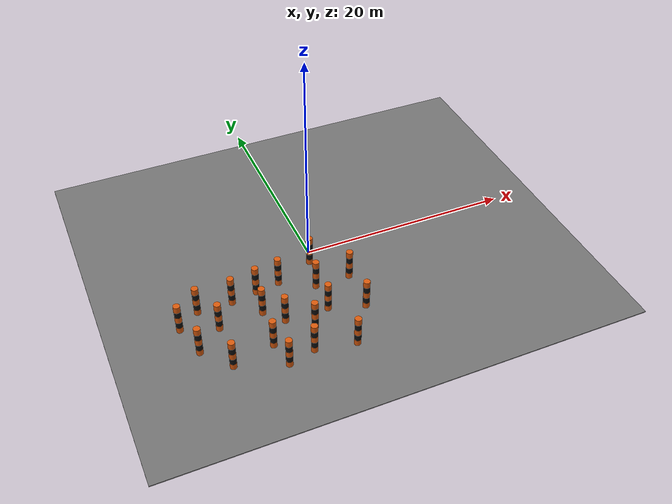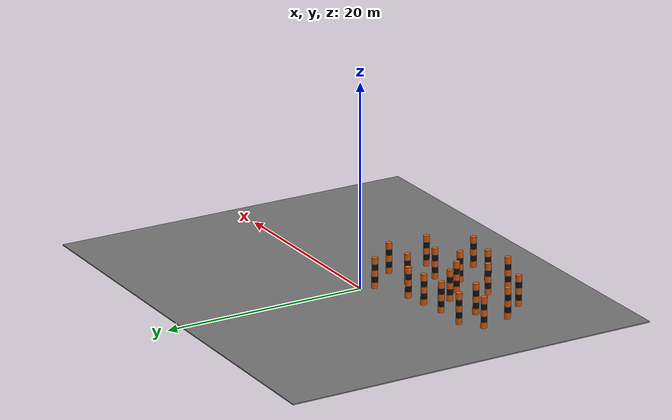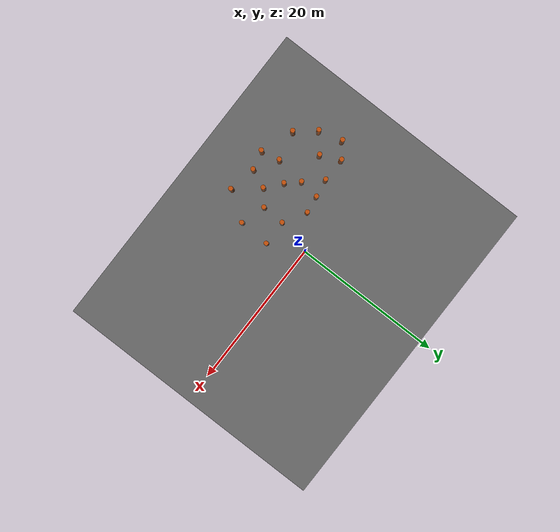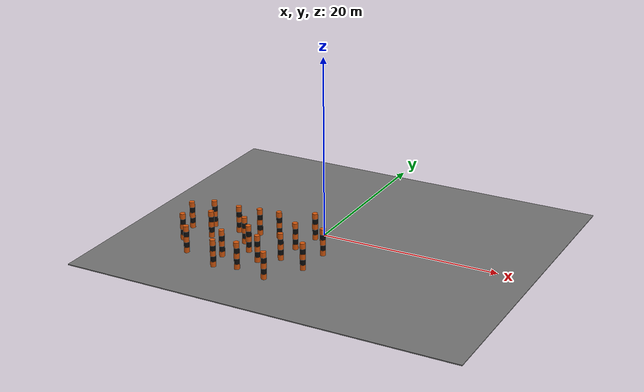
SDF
<sdf version="1.6">
 <world name="medium_forest_striped_poles_passable_0p10_per_m2">
  <model name="ground">
   <static>true</static>
   <pose>2 0 -0.05 0 0 0</pose>
   <link name="link">
    <collision name="collision">
     <geometry><box><size>44 37 0.1</size></box></geometry>
     <surface><friction><ode><mu>1.0</mu><mu2>1.0</mu2></ode></friction></surface>
    </collision>
    <visual name="visual">
     <geometry><box><size>44 37 0.1</size></box></geometry>
     <material>
      <ambient>0.45 0.45 0.45 1</ambient>
      <diffuse>0.45 0.45 0.45 1</diffuse>
      <specular>0.02 0.02 0.02 1</specular>
     </material>
    </visual>
   </link>
  </model>
  <model name="passable_striped_pole_002">
   <static>true</static>
   <pose>-5.064 -7.254 0 0 0 0</pose>
   <link name="link">
    <collision name="collision">
     <pose>0 0 1.5 0 0 0</pose>
     <geometry><cylinder><radius>0.30</radius><length>3.0</length></cylinder></geometry>
     <surface>
      <contact><ode><kp>1000000</kp><kd>100</kd><max_vel>0.01</max_vel><min_depth>0.001</min_depth></ode></contact>
      <friction><ode><mu>1.0</mu><mu2>1.0</mu2></ode></friction>
     </surface>
    </collision>
    <visual name="band_1">
     <pose>0 0 0.3 0 0 0</pose>
     <geometry><cylinder><radius>0.30</radius><length>0.6</length></cylinder></geometry>
     <material>
      <ambient>0.85 0.35 0.05 1</ambient>
      <diffuse>0.85 0.35 0.05 1</diffuse>
      <specular>0.02 0.02 0.02 1</specular>
     </material>
    </visual>
    <visual name="band_2">
     <pose>0 0 0.9 0 0 0</pose>
     <geometry><cylinder><radius>0.30</radius><length>0.6</length></cylinder></geometry>
     <material>
      <ambient>0.05 0.05 0.05 1</ambient>
      <diffuse>0.05 0.05 0.05 1</diffuse>
      <specular>0.02 0.02 0.02 1</specular>
     </material>
    </visual>
    <visual name="band_3">
     <pose>0 0 1.5 0 0 0</pose>
     <geometry><cylinder><radius>0.30</radius><length>0.6</length></cylinder></geometry>
     <material>
      <ambient>0.85 0.35 0.05 1</ambient>
      <diffuse>0.85 0.35 0.05 1</diffuse>
      <specular>0.02 0.02 0.02 1</specular>
     </material>
    </visual>
    <visual name="band_4">
     <pose>0 0 2.1 0 0 0</pose>
     <geometry><cylinder><radius>0.30</radius><length>0.6</length></cylinder></geometry>
     <material>
      <ambient>0.05 0.05 0.05 1</ambient>
      <diffuse>0.05 0.05 0.05 1</diffuse>
      <specular>0.02 0.02 0.02 1</specular>
     </material>
    </visual>
    <visual name="band_5">
     <pose>0 0 2.7 0 0 0</pose>
     <geometry><cylinder><radius>0.30</radius><length>0.6</length></cylinder></geometry>
     <material>
      <ambient>0.85 0.35 0.05 1</ambient>
      <diffuse>0.85 0.35 0.05 1</diffuse>
      <specular>0.02 0.02 0.02 1</specular>
     </material>
    </visual>
   </link>
  </model>
  <model name="passable_striped_pole_005">
   <static>true</static>
   <pose>-0.452 -11.973 0 0 0 0</pose>
   <link name="link">
    <collision name="collision">
     <pose>0 0 1.5 0 0 0</pose>
     <geometry><cylinder><radius>0.30</radius><length>3.0</length></cylinder></geometry>
     <surface>
      <contact><ode><kp>1000000</kp><kd>100</kd><max_vel>0.01</max_vel><min_depth>0.001</min_depth></ode></contact>
      <friction><ode><mu>1.0</mu><mu2>1.0</mu2></ode></friction>
     </surface>
    </collision>
    <visual name="band_1">
     <pose>0 0 0.3 0 0 0</pose>
     <geometry><cylinder><radius>0.30</radius><length>0.6</length></cylinder></geometry>
     <material>
      <ambient>0.85 0.35 0.05 1</ambient>
      <diffuse>0.85 0.35 0.05 1</diffuse>
      <specular>0.02 0.02 0.02 1</specular>
     </material>
    </visual>
    <visual name="band_2">
     <pose>0 0 0.9 0 0 0</pose>
     <geometry><cylinder><radius>0.30</radius><length>0.6</length></cylinder></geometry>
     <material>
      <ambient>0.05 0.05 0.05 1</ambient>
      <diffuse>0.05 0.05 0.05 1</diffuse>
      <specular>0.02 0.02 0.02 1</specular>
     </material>
    </visual>
    <visual name="band_3">
     <pose>0 0 1.5 0 0 0</pose>
     <geometry><cylinder><radius>0.30</radius><length>0.6</length></cylinder></geometry>
     <material>
      <ambient>0.85 0.35 0.05 1</ambient>
      <diffuse>0.85 0.35 0.05 1</diffuse>
      <specular>0.02 0.02 0.02 1</specular>
     </material>
    </visual>
    <visual name="band_4">
     <pose>0 0 2.1 0 0 0</pose>
     <geometry><cylinder><radius>0.30</radius><length>0.6</length></cylinder></geometry>
     <material>
      <ambient>0.05 0.05 0.05 1</ambient>
      <diffuse>0.05 0.05 0.05 1</diffuse>
      <specular>0.02 0.02 0.02 1</specular>
     </material>
    </visual>
    <visual name="band_5">
     <pose>0 0 2.7 0 0 0</pose>
     <geometry><cylinder><radius>0.30</radius><length>0.6</length></cylinder></geometry>
     <material>
      <ambient>0.85 0.35 0.05 1</ambient>
      <diffuse>0.85 0.35 0.05 1</diffuse>
      <specular>0.02 0.02 0.02 1</specular>
     </material>
    </visual>
   </link>
  </model>
  <model name="passable_striped_pole_007">
   <static>true</static>
   <pose>-12.867 -7.848 0 0 0 0</pose>
   <link name="link">
    <collision name="collision">
     <pose>0 0 1.5 0 0 0</pose>
     <geometry><cylinder><radius>0.30</radius><length>3.0</length></cylinder></geometry>
     <surface>
      <contact><ode><kp>1000000</kp><kd>100</kd><max_vel>0.01</max_vel><min_depth>0.001</min_depth></ode></contact>
      <friction><ode><mu>1.0</mu><mu2>1.0</mu2></ode></friction>
     </surface>
    </collision>
    <visual name="band_1">
     <pose>0 0 0.3 0 0 0</pose>
     <geometry><cylinder><radius>0.30</radius><length>0.6</length></cylinder></geometry>
     <material>
      <ambient>0.85 0.35 0.05 1</ambient>
      <diffuse>0.85 0.35 0.05 1</diffuse>
      <specular>0.02 0.02 0.02 1</specular>
     </material>
    </visual>
    <visual name="band_2">
     <pose>0 0 0.9 0 0 0</pose>
     <geometry><cylinder><radius>0.30</radius><length>0.6</length></cylinder></geometry>
     <material>
      <ambient>0.05 0.05 0.05 1</ambient>
      <diffuse>0.05 0.05 0.05 1</diffuse>
      <specular>0.02 0.02 0.02 1</specular>
     </material>
    </visual>
    <visual name="band_3">
     <pose>0 0 1.5 0 0 0</pose>
     <geometry><cylinder><radius>0.30</radius><length>0.6</length></cylinder></geometry>
     <material>
      <ambient>0.85 0.35 0.05 1</ambient>
      <diffuse>0.85 0.35 0.05 1</diffuse>
      <specular>0.02 0.02 0.02 1</specular>
     </material>
    </visual>
    <visual name="band_4">
     <pose>0 0 2.1 0 0 0</pose>
     <geometry><cylinder><radius>0.30</radius><length>0.6</length></cylinder></geometry>
     <material>
      <ambient>0.05 0.05 0.05 1</ambient>
      <diffuse>0.05 0.05 0.05 1</diffuse>
      <specular>0.02 0.02 0.02 1</specular>
     </material>
    </visual>
    <visual name="band_5">
     <pose>0 0 2.7 0 0 0</pose>
     <geometry><cylinder><radius>0.30</radius><length>0.6</length></cylinder></geometry>
     <material>
      <ambient>0.85 0.35 0.05 1</ambient>
      <diffuse>0.85 0.35 0.05 1</diffuse>
      <specular>0.02 0.02 0.02 1</specular>
     </material>
    </visual>
   </link>
  </model>
  <model name="passable_striped_pole_011">
   <static>true</static>
   <pose>-3.016 -8.906 0 0 0 0</pose>
   <link name="link">
    <collision name="collision">
     <pose>0 0 1.5 0 0 0</pose>
     <geometry><cylinder><radius>0.30</radius><length>3.0</length></cylinder></geometry>
     <surface>
      <contact><ode><kp>1000000</kp><kd>100</kd><max_vel>0.01</max_vel><min_depth>0.001</min_depth></ode></contact>
      <friction><ode><mu>1.0</mu><mu2>1.0</mu2></ode></friction>
     </surface>
    </collision>
    <visual name="band_1">
     <pose>0 0 0.3 0 0 0</pose>
     <geometry><cylinder><radius>0.30</radius><length>0.6</length></cylinder></geometry>
     <material>
      <ambient>0.85 0.35 0.05 1</ambient>
      <diffuse>0.85 0.35 0.05 1</diffuse>
      <specular>0.02 0.02 0.02 1</specular>
     </material>
    </visual>
    <visual name="band_2">
     <pose>0 0 0.9 0 0 0</pose>
     <geometry><cylinder><radius>0.30</radius><length>0.6</length></cylinder></geometry>
     <material>
      <ambient>0.05 0.05 0.05 1</ambient>
      <diffuse>0.05 0.05 0.05 1</diffuse>
      <specular>0.02 0.02 0.02 1</specular>
     </material>
    </visual>
    <visual name="band_3">
     <pose>0 0 1.5 0 0 0</pose>
     <geometry><cylinder><radius>0.30</radius><length>0.6</length></cylinder></geometry>
     <material>
      <ambient>0.85 0.35 0.05 1</ambient>
      <diffuse>0.85 0.35 0.05 1</diffuse>
      <specular>0.02 0.02 0.02 1</specular>
     </material>
    </visual>
    <visual name="band_4">
     <pose>0 0 2.1 0 0 0</pose>
     <geometry><cylinder><radius>0.30</radius><length>0.6</length></cylinder></geometry>
     <material>
      <ambient>0.05 0.05 0.05 1</ambient>
      <diffuse>0.05 0.05 0.05 1</diffuse>
      <specular>0.02 0.02 0.02 1</specular>
     </material>
    </visual>
    <visual name="band_5">
     <pose>0 0 2.7 0 0 0</pose>
     <geometry><cylinder><radius>0.30</radius><length>0.6</length></cylinder></geometry>
     <material>
      <ambient>0.85 0.35 0.05 1</ambient>
      <diffuse>0.85 0.35 0.05 1</diffuse>
      <specular>0.02 0.02 0.02 1</specular>
     </material>
    </visual>
   </link>
  </model>
  <model name="passable_striped_pole_013">
   <static>true</static>
   <pose>-10.788 -10.340 0 0 0 0</pose>
   <link name="link">
    <collision name="collision">
     <pose>0 0 1.5 0 0 0</pose>
     <geometry><cylinder><radius>0.30</radius><length>3.0</length></cylinder></geometry>
     <surface>
      <contact><ode><kp>1000000</kp><kd>100</kd><max_vel>0.01</max_vel><min_depth>0.001</min_depth></ode></contact>
      <friction><ode><mu>1.0</mu><mu2>1.0</mu2></ode></friction>
     </surface>
    </collision>
    <visual name="band_1">
     <pose>0 0 0.3 0 0 0</pose>
     <geometry><cylinder><radius>0.30</radius><length>0.6</length></cylinder></geometry>
     <material>
      <ambient>0.85 0.35 0.05 1</ambient>
      <diffuse>0.85 0.35 0.05 1</diffuse>
      <specular>0.02 0.02 0.02 1</specular>
     </material>
    </visual>
    <visual name="band_2">
     <pose>0 0 0.9 0 0 0</pose>
     <geometry><cylinder><radius>0.30</radius><length>0.6</length></cylinder></geometry>
     <material>
      <ambient>0.05 0.05 0.05 1</ambient>
      <diffuse>0.05 0.05 0.05 1</diffuse>
      <specular>0.02 0.02 0.02 1</specular>
     </material>
    </visual>
    <visual name="band_3">
     <pose>0 0 1.5 0 0 0</pose>
     <geometry><cylinder><radius>0.30</radius><length>0.6</length></cylinder></geometry>
     <material>
      <ambient>0.85 0.35 0.05 1</ambient>
      <diffuse>0.85 0.35 0.05 1</diffuse>
      <specular>0.02 0.02 0.02 1</specular>
     </material>
    </visual>
    <visual name="band_4">
     <pose>0 0 2.1 0 0 0</pose>
     <geometry><cylinder><radius>0.30</radius><length>0.6</length></cylinder></geometry>
     <material>
      <ambient>0.05 0.05 0.05 1</ambient>
      <diffuse>0.05 0.05 0.05 1</diffuse>
      <specular>0.02 0.02 0.02 1</specular>
     </material>
    </visual>
    <visual name="band_5">
     <pose>0 0 2.7 0 0 0</pose>
     <geometry><cylinder><radius>0.30</radius><length>0.6</length></cylinder></geometry>
     <material>
      <ambient>0.85 0.35 0.05 1</ambient>
      <diffuse>0.85 0.35 0.05 1</diffuse>
      <specular>0.02 0.02 0.02 1</specular>
     </material>
    </visual>
   </link>
  </model>
  <model name="passable_striped_pole_017">
   <static>true</static>
   <pose>-6.544 -5.639 0 0 0 0</pose>
   <link name="link">
    <collision name="collision">
     <pose>0 0 1.5 0 0 0</pose>
     <geometry><cylinder><radius>0.30</radius><length>3.0</length></cylinder></geometry>
     <surface>
      <contact><ode><kp>1000000</kp><kd>100</kd><max_vel>0.01</max_vel><min_depth>0.001</min_depth></ode></contact>
      <friction><ode><mu>1.0</mu><mu2>1.0</mu2></ode></friction>
     </surface>
    </collision>
    <visual name="band_1">
     <pose>0 0 0.3 0 0 0</pose>
     <geometry><cylinder><radius>0.30</radius><length>0.6</length></cylinder></geometry>
     <material>
      <ambient>0.85 0.35 0.05 1</ambient>
      <diffuse>0.85 0.35 0.05 1</diffuse>
      <specular>0.02 0.02 0.02 1</specular>
     </material>
    </visual>
    <visual name="band_2">
     <pose>0 0 0.9 0 0 0</pose>
     <geometry><cylinder><radius>0.30</radius><length>0.6</length></cylinder></geometry>
     <material>
      <ambient>0.05 0.05 0.05 1</ambient>
      <diffuse>0.05 0.05 0.05 1</diffuse>
      <specular>0.02 0.02 0.02 1</specular>
     </material>
    </visual>
    <visual name="band_3">
     <pose>0 0 1.5 0 0 0</pose>
     <geometry><cylinder><radius>0.30</radius><length>0.6</length></cylinder></geometry>
     <material>
      <ambient>0.85 0.35 0.05 1</ambient>
      <diffuse>0.85 0.35 0.05 1</diffuse>
      <specular>0.02 0.02 0.02 1</specular>
     </material>
    </visual>
    <visual name="band_4">
     <pose>0 0 2.1 0 0 0</pose>
     <geometry><cylinder><radius>0.30</radius><length>0.6</length></cylinder></geometry>
     <material>
      <ambient>0.05 0.05 0.05 1</ambient>
      <diffuse>0.05 0.05 0.05 1</diffuse>
      <specular>0.02 0.02 0.02 1</specular>
     </material>
    </visual>
    <visual name="band_5">
     <pose>0 0 2.7 0 0 0</pose>
     <geometry><cylinder><radius>0.30</radius><length>0.6</length></cylinder></geometry>
     <material>
      <ambient>0.85 0.35 0.05 1</ambient>
      <diffuse>0.85 0.35 0.05 1</diffuse>
      <specular>0.02 0.02 0.02 1</specular>
     </material>
    </visual>
   </link>
  </model>
  <model name="passable_striped_pole_018">
   <static>true</static>
   <pose>-10.529 -5.917 0 0 0 0</pose>
   <link name="link">
    <collision name="collision">
     <pose>0 0 1.5 0 0 0</pose>
     <geometry><cylinder><radius>0.30</radius><length>3.0</length></cylinder></geometry>
     <surface>
      <contact><ode><kp>1000000</kp><kd>100</kd><max_vel>0.01</max_vel><min_depth>0.001</min_depth></ode></contact>
      <friction><ode><mu>1.0</mu><mu2>1.0</mu2></ode></friction>
     </surface>
    </collision>
    <visual name="band_1">
     <pose>0 0 0.3 0 0 0</pose>
     <geometry><cylinder><radius>0.30</radius><length>0.6</length></cylinder></geometry>
     <material>
      <ambient>0.85 0.35 0.05 1</ambient>
      <diffuse>0.85 0.35 0.05 1</diffuse>
      <specular>0.02 0.02 0.02 1</specular>
     </material>
    </visual>
    <visual name="band_2">
     <pose>0 0 0.9 0 0 0</pose>
     <geometry><cylinder><radius>0.30</radius><length>0.6</length></cylinder></geometry>
     <material>
      <ambient>0.05 0.05 0.05 1</ambient>
      <diffuse>0.05 0.05 0.05 1</diffuse>
      <specular>0.02 0.02 0.02 1</specular>
     </material>
    </visual>
    <visual name="band_3">
     <pose>0 0 1.5 0 0 0</pose>
     <geometry><cylinder><radius>0.30</radius><length>0.6</length></cylinder></geometry>
     <material>
      <ambient>0.85 0.35 0.05 1</ambient>
      <diffuse>0.85 0.35 0.05 1</diffuse>
      <specular>0.02 0.02 0.02 1</specular>
     </material>
    </visual>
    <visual name="band_4">
     <pose>0 0 2.1 0 0 0</pose>
     <geometry><cylinder><radius>0.30</radius><length>0.6</length></cylinder></geometry>
     <material>
      <ambient>0.05 0.05 0.05 1</ambient>
      <diffuse>0.05 0.05 0.05 1</diffuse>
      <specular>0.02 0.02 0.02 1</specular>
     </material>
    </visual>
    <visual name="band_5">
     <pose>0 0 2.7 0 0 0</pose>
     <geometry><cylinder><radius>0.30</radius><length>0.6</length></cylinder></geometry>
     <material>
      <ambient>0.85 0.35 0.05 1</ambient>
      <diffuse>0.85 0.35 0.05 1</diffuse>
      <specular>0.02 0.02 0.02 1</specular>
     </material>
    </visual>
   </link>
  </model>
  <model name="passable_striped_pole_022">
   <static>true</static>
   <pose>-8.569 -3.441 0 0 0 0</pose>
   <link name="link">
    <collision name="collision">
     <pose>0 0 1.5 0 0 0</pose>
     <geometry><cylinder><radius>0.30</radius><length>3.0</length></cylinder></geometry>
     <surface>
      <contact><ode><kp>1000000</kp><kd>100</kd><max_vel>0.01</max_vel><min_depth>0.001</min_depth></ode></contact>
      <friction><ode><mu>1.0</mu><mu2>1.0</mu2></ode></friction>
     </surface>
    </collision>
    <visual name="band_1">
     <pose>0 0 0.3 0 0 0</pose>
     <geometry><cylinder><radius>0.30</radius><length>0.6</length></cylinder></geometry>
     <material>
      <ambient>0.85 0.35 0.05 1</ambient>
      <diffuse>0.85 0.35 0.05 1</diffuse>
      <specular>0.02 0.02 0.02 1</specular>
     </material>
    </visual>
    <visual name="band_2">
     <pose>0 0 0.9 0 0 0</pose>
     <geometry><cylinder><radius>0.30</radius><length>0.6</length></cylinder></geometry>
     <material>
      <ambient>0.05 0.05 0.05 1</ambient>
      <diffuse>0.05 0.05 0.05 1</diffuse>
      <specular>0.02 0.02 0.02 1</specular>
     </material>
    </visual>
    <visual name="band_3">
     <pose>0 0 1.5 0 0 0</pose>
     <geometry><cylinder><radius>0.30</radius><length>0.6</length></cylinder></geometry>
     <material>
      <ambient>0.85 0.35 0.05 1</ambient>
      <diffuse>0.85 0.35 0.05 1</diffuse>
      <specular>0.02 0.02 0.02 1</specular>
     </material>
    </visual>
    <visual name="band_4">
     <pose>0 0 2.1 0 0 0</pose>
     <geometry><cylinder><radius>0.30</radius><length>0.6</length></cylinder></geometry>
     <material>
      <ambient>0.05 0.05 0.05 1</ambient>
      <diffuse>0.05 0.05 0.05 1</diffuse>
      <specular>0.02 0.02 0.02 1</specular>
     </material>
    </visual>
    <visual name="band_5">
     <pose>0 0 2.7 0 0 0</pose>
     <geometry><cylinder><radius>0.30</radius><length>0.6</length></cylinder></geometry>
     <material>
      <ambient>0.85 0.35 0.05 1</ambient>
      <diffuse>0.85 0.35 0.05 1</diffuse>
      <specular>0.02 0.02 0.02 1</specular>
     </material>
    </visual>
   </link>
  </model>
  <model name="passable_striped_pole_026">
   <static>true</static>
   <pose>-6.508 -11.917 0 0 0 0</pose>
   <link name="link">
    <collision name="collision">
     <pose>0 0 1.5 0 0 0</pose>
     <geometry><cylinder><radius>0.30</radius><length>3.0</length></cylinder></geometry>
     <surface>
      <contact><ode><kp>1000000</kp><kd>100</kd><max_vel>0.01</max_vel><min_depth>0.001</min_depth></ode></contact>
      <friction><ode><mu>1.0</mu><mu2>1.0</mu2></ode></friction>
     </surface>
    </collision>
    <visual name="band_1">
     <pose>0 0 0.3 0 0 0</pose>
     <geometry><cylinder><radius>0.30</radius><length>0.6</length></cylinder></geometry>
     <material>
      <ambient>0.85 0.35 0.05 1</ambient>
      <diffuse>0.85 0.35 0.05 1</diffuse>
      <specular>0.02 0.02 0.02 1</specular>
     </material>
    </visual>
    <visual name="band_2">
     <pose>0 0 0.9 0 0 0</pose>
     <geometry><cylinder><radius>0.30</radius><length>0.6</length></cylinder></geometry>
     <material>
      <ambient>0.05 0.05 0.05 1</ambient>
      <diffuse>0.05 0.05 0.05 1</diffuse>
      <specular>0.02 0.02 0.02 1</specular>
     </material>
    </visual>
    <visual name="band_3">
     <pose>0 0 1.5 0 0 0</pose>
     <geometry><cylinder><radius>0.30</radius><length>0.6</length></cylinder></geometry>
     <material>
      <ambient>0.85 0.35 0.05 1</ambient>
      <diffuse>0.85 0.35 0.05 1</diffuse>
      <specular>0.02 0.02 0.02 1</specular>
     </material>
    </visual>
    <visual name="band_4">
     <pose>0 0 2.1 0 0 0</pose>
     <geometry><cylinder><radius>0.30</radius><length>0.6</length></cylinder></geometry>
     <material>
      <ambient>0.05 0.05 0.05 1</ambient>
      <diffuse>0.05 0.05 0.05 1</diffuse>
      <specular>0.02 0.02 0.02 1</specular>
     </material>
    </visual>
    <visual name="band_5">
     <pose>0 0 2.7 0 0 0</pose>
     <geometry><cylinder><radius>0.30</radius><length>0.6</length></cylinder></geometry>
     <material>
      <ambient>0.85 0.35 0.05 1</ambient>
      <diffuse>0.85 0.35 0.05 1</diffuse>
      <specular>0.02 0.02 0.02 1</specular>
     </material>
    </visual>
   </link>
  </model>
  <model name="passable_striped_pole_030">
   <static>true</static>
   <pose>-1.159 -7.349 0 0 0 0</pose>
   <link name="link">
    <collision name="collision">
     <pose>0 0 1.5 0 0 0</pose>
     <geometry><cylinder><radius>0.30</radius><length>3.0</length></cylinder></geometry>
     <surface>
      <contact><ode><kp>1000000</kp><kd>100</kd><max_vel>0.01</max_vel><min_depth>0.001</min_depth></ode></contact>
      <friction><ode><mu>1.0</mu><mu2>1.0</mu2></ode></friction>
     </surface>
    </collision>
    <visual name="band_1">
     <pose>0 0 0.3 0 0 0</pose>
     <geometry><cylinder><radius>0.30</radius><length>0.6</length></cylinder></geometry>
     <material>
      <ambient>0.85 0.35 0.05 1</ambient>
      <diffuse>0.85 0.35 0.05 1</diffuse>
      <specular>0.02 0.02 0.02 1</specular>
     </material>
    </visual>
    <visual name="band_2">
     <pose>0 0 0.9 0 0 0</pose>
     <geometry><cylinder><radius>0.30</radius><length>0.6</length></cylinder></geometry>
     <material>
      <ambient>0.05 0.05 0.05 1</ambient>
      <diffuse>0.05 0.05 0.05 1</diffuse>
      <specular>0.02 0.02 0.02 1</specular>
     </material>
    </visual>
    <visual name="band_3">
     <pose>0 0 1.5 0 0 0</pose>
     <geometry><cylinder><radius>0.30</radius><length>0.6</length></cylinder></geometry>
     <material>
      <ambient>0.85 0.35 0.05 1</ambient>
      <diffuse>0.85 0.35 0.05 1</diffuse>
      <specular>0.02 0.02 0.02 1</specular>
     </material>
    </visual>
    <visual name="band_4">
     <pose>0 0 2.1 0 0 0</pose>
     <geometry><cylinder><radius>0.30</radius><length>0.6</length></cylinder></geometry>
     <material>
      <ambient>0.05 0.05 0.05 1</ambient>
      <diffuse>0.05 0.05 0.05 1</diffuse>
      <specular>0.02 0.02 0.02 1</specular>
     </material>
    </visual>
    <visual name="band_5">
     <pose>0 0 2.7 0 0 0</pose>
     <geometry><cylinder><radius>0.30</radius><length>0.6</length></cylinder></geometry>
     <material>
      <ambient>0.85 0.35 0.05 1</ambient>
      <diffuse>0.85 0.35 0.05 1</diffuse>
      <specular>0.02 0.02 0.02 1</specular>
     </material>
    </visual>
   </link>
  </model>
  <model name="passable_striped_pole_033">
   <static>true</static>
   <pose>-11.705 -3.388 0 0 0 0</pose>
   <link name="link">
    <collision name="collision">
     <pose>0 0 1.5 0 0 0</pose>
     <geometry><cylinder><radius>0.30</radius><length>3.0</length></cylinder></geometry>
     <surface>
      <contact><ode><kp>1000000</kp><kd>100</kd><max_vel>0.01</max_vel><min_depth>0.001</min_depth></ode></contact>
      <friction><ode><mu>1.0</mu><mu2>1.0</mu2></ode></friction>
     </surface>
    </collision>
    <visual name="band_1">
     <pose>0 0 0.3 0 0 0</pose>
     <geometry><cylinder><radius>0.30</radius><length>0.6</length></cylinder></geometry>
     <material>
      <ambient>0.85 0.35 0.05 1</ambient>
      <diffuse>0.85 0.35 0.05 1</diffuse>
      <specular>0.02 0.02 0.02 1</specular>
     </material>
    </visual>
    <visual name="band_2">
     <pose>0 0 0.9 0 0 0</pose>
     <geometry><cylinder><radius>0.30</radius><length>0.6</length></cylinder></geometry>
     <material>
      <ambient>0.05 0.05 0.05 1</ambient>
      <diffuse>0.05 0.05 0.05 1</diffuse>
      <specular>0.02 0.02 0.02 1</specular>
     </material>
    </visual>
    <visual name="band_3">
     <pose>0 0 1.5 0 0 0</pose>
     <geometry><cylinder><radius>0.30</radius><length>0.6</length></cylinder></geometry>
     <material>
      <ambient>0.85 0.35 0.05 1</ambient>
      <diffuse>0.85 0.35 0.05 1</diffuse>
      <specular>0.02 0.02 0.02 1</specular>
     </material>
    </visual>
    <visual name="band_4">
     <pose>0 0 2.1 0 0 0</pose>
     <geometry><cylinder><radius>0.30</radius><length>0.6</length></cylinder></geometry>
     <material>
      <ambient>0.05 0.05 0.05 1</ambient>
      <diffuse>0.05 0.05 0.05 1</diffuse>
      <specular>0.02 0.02 0.02 1</specular>
     </material>
    </visual>
    <visual name="band_5">
     <pose>0 0 2.7 0 0 0</pose>
     <geometry><cylinder><radius>0.30</radius><length>0.6</length></cylinder></geometry>
     <material>
      <ambient>0.85 0.35 0.05 1</ambient>
      <diffuse>0.85 0.35 0.05 1</diffuse>
      <specular>0.02 0.02 0.02 1</specular>
     </material>
    </visual>
   </link>
  </model>
  <model name="passable_striped_pole_037">
   <static>true</static>
   <pose>2.018 -8.341 0 0 0 0</pose>
   <link name="link">
    <collision name="collision">
     <pose>0 0 1.5 0 0 0</pose>
     <geometry><cylinder><radius>0.30</radius><length>3.0</length></cylinder></geometry>
     <surface>
      <contact><ode><kp>1000000</kp><kd>100</kd><max_vel>0.01</max_vel><min_depth>0.001</min_depth></ode></contact>
      <friction><ode><mu>1.0</mu><mu2>1.0</mu2></ode></friction>
     </surface>
    </collision>
    <visual name="band_1">
     <pose>0 0 0.3 0 0 0</pose>
     <geometry><cylinder><radius>0.30</radius><length>0.6</length></cylinder></geometry>
     <material>
      <ambient>0.85 0.35 0.05 1</ambient>
      <diffuse>0.85 0.35 0.05 1</diffuse>
      <specular>0.02 0.02 0.02 1</specular>
     </material>
    </visual>
    <visual name="band_2">
     <pose>0 0 0.9 0 0 0</pose>
     <geometry><cylinder><radius>0.30</radius><length>0.6</length></cylinder></geometry>
     <material>
      <ambient>0.05 0.05 0.05 1</ambient>
      <diffuse>0.05 0.05 0.05 1</diffuse>
      <specular>0.02 0.02 0.02 1</specular>
     </material>
    </visual>
    <visual name="band_3">
     <pose>0 0 1.5 0 0 0</pose>
     <geometry><cylinder><radius>0.30</radius><length>0.6</length></cylinder></geometry>
     <material>
      <ambient>0.85 0.35 0.05 1</ambient>
      <diffuse>0.85 0.35 0.05 1</diffuse>
      <specular>0.02 0.02 0.02 1</specular>
     </material>
    </visual>
    <visual name="band_4">
     <pose>0 0 2.1 0 0 0</pose>
     <geometry><cylinder><radius>0.30</radius><length>0.6</length></cylinder></geometry>
     <material>
      <ambient>0.05 0.05 0.05 1</ambient>
      <diffuse>0.05 0.05 0.05 1</diffuse>
      <specular>0.02 0.02 0.02 1</specular>
     </material>
    </visual>
    <visual name="band_5">
     <pose>0 0 2.7 0 0 0</pose>
     <geometry><cylinder><radius>0.30</radius><length>0.6</length></cylinder></geometry>
     <material>
      <ambient>0.85 0.35 0.05 1</ambient>
      <diffuse>0.85 0.35 0.05 1</diffuse>
      <specular>0.02 0.02 0.02 1</specular>
     </material>
    </visual>
   </link>
  </model>
  <model name="passable_striped_pole_040">
   <static>true</static>
   <pose>-13.682 -4.791 0 0 0 0</pose>
   <link name="link">
    <collision name="collision">
     <pose>0 0 1.5 0 0 0</pose>
     <geometry><cylinder><radius>0.30</radius><length>3.0</length></cylinder></geometry>
     <surface>
      <contact><ode><kp>1000000</kp><kd>100</kd><max_vel>0.01</max_vel><min_depth>0.001</min_depth></ode></contact>
      <friction><ode><mu>1.0</mu><mu2>1.0</mu2></ode></friction>
     </surface>
    </collision>
    <visual name="band_1">
     <pose>0 0 0.3 0 0 0</pose>
     <geometry><cylinder><radius>0.30</radius><length>0.6</length></cylinder></geometry>
     <material>
      <ambient>0.85 0.35 0.05 1</ambient>
      <diffuse>0.85 0.35 0.05 1</diffuse>
      <specular>0.02 0.02 0.02 1</specular>
     </material>
    </visual>
    <visual name="band_2">
     <pose>0 0 0.9 0 0 0</pose>
     <geometry><cylinder><radius>0.30</radius><length>0.6</length></cylinder></geometry>
     <material>
      <ambient>0.05 0.05 0.05 1</ambient>
      <diffuse>0.05 0.05 0.05 1</diffuse>
      <specular>0.02 0.02 0.02 1</specular>
     </material>
    </visual>
    <visual name="band_3">
     <pose>0 0 1.5 0 0 0</pose>
     <geometry><cylinder><radius>0.30</radius><length>0.6</length></cylinder></geometry>
     <material>
      <ambient>0.85 0.35 0.05 1</ambient>
      <diffuse>0.85 0.35 0.05 1</diffuse>
      <specular>0.02 0.02 0.02 1</specular>
     </material>
    </visual>
    <visual name="band_4">
     <pose>0 0 2.1 0 0 0</pose>
     <geometry><cylinder><radius>0.30</radius><length>0.6</length></cylinder></geometry>
     <material>
      <ambient>0.05 0.05 0.05 1</ambient>
      <diffuse>0.05 0.05 0.05 1</diffuse>
      <specular>0.02 0.02 0.02 1</specular>
     </material>
    </visual>
    <visual name="band_5">
     <pose>0 0 2.7 0 0 0</pose>
     <geometry><cylinder><radius>0.30</radius><length>0.6</length></cylinder></geometry>
     <material>
      <ambient>0.85 0.35 0.05 1</ambient>
      <diffuse>0.85 0.35 0.05 1</diffuse>
      <specular>0.02 0.02 0.02 1</specular>
     </material>
    </visual>
   </link>
  </model>
  <model name="passable_striped_pole_042">
   <static>true</static>
   <pose>-4.044 -11.287 0 0 0 0</pose>
   <link name="link">
    <collision name="collision">
     <pose>0 0 1.5 0 0 0</pose>
     <geometry><cylinder><radius>0.30</radius><length>3.0</length></cylinder></geometry>
     <surface>
      <contact><ode><kp>1000000</kp><kd>100</kd><max_vel>0.01</max_vel><min_depth>0.001</min_depth></ode></contact>
      <friction><ode><mu>1.0</mu><mu2>1.0</mu2></ode></friction>
     </surface>
    </collision>
    <visual name="band_1">
     <pose>0 0 0.3 0 0 0</pose>
     <geometry><cylinder><radius>0.30</radius><length>0.6</length></cylinder></geometry>
     <material>
      <ambient>0.85 0.35 0.05 1</ambient>
      <diffuse>0.85 0.35 0.05 1</diffuse>
      <specular>0.02 0.02 0.02 1</specular>
     </material>
    </visual>
    <visual name="band_2">
     <pose>0 0 0.9 0 0 0</pose>
     <geometry><cylinder><radius>0.30</radius><length>0.6</length></cylinder></geometry>
     <material>
      <ambient>0.05 0.05 0.05 1</ambient>
      <diffuse>0.05 0.05 0.05 1</diffuse>
      <specular>0.02 0.02 0.02 1</specular>
     </material>
    </visual>
    <visual name="band_3">
     <pose>0 0 1.5 0 0 0</pose>
     <geometry><cylinder><radius>0.30</radius><length>0.6</length></cylinder></geometry>
     <material>
      <ambient>0.85 0.35 0.05 1</ambient>
      <diffuse>0.85 0.35 0.05 1</diffuse>
      <specular>0.02 0.02 0.02 1</specular>
     </material>
    </visual>
    <visual name="band_4">
     <pose>0 0 2.1 0 0 0</pose>
     <geometry><cylinder><radius>0.30</radius><length>0.6</length></cylinder></geometry>
     <material>
      <ambient>0.05 0.05 0.05 1</ambient>
      <diffuse>0.05 0.05 0.05 1</diffuse>
      <specular>0.02 0.02 0.02 1</specular>
     </material>
    </visual>
    <visual name="band_5">
     <pose>0 0 2.7 0 0 0</pose>
     <geometry><cylinder><radius>0.30</radius><length>0.6</length></cylinder></geometry>
     <material>
      <ambient>0.85 0.35 0.05 1</ambient>
      <diffuse>0.85 0.35 0.05 1</diffuse>
      <specular>0.02 0.02 0.02 1</specular>
     </material>
    </visual>
   </link>
  </model>
  <model name="passable_striped_pole_046">
   <static>true</static>
   <pose>-6.973 -9.472 0 0 0 0</pose>
   <link name="link">
    <collision name="collision">
     <pose>0 0 1.5 0 0 0</pose>
     <geometry><cylinder><radius>0.30</radius><length>3.0</length></cylinder></geometry>
     <surface>
      <contact><ode><kp>1000000</kp><kd>100</kd><max_vel>0.01</max_vel><min_depth>0.001</min_depth></ode></contact>
      <friction><ode><mu>1.0</mu><mu2>1.0</mu2></ode></friction>
     </surface>
    </collision>
    <visual name="band_1">
     <pose>0 0 0.3 0 0 0</pose>
     <geometry><cylinder><radius>0.30</radius><length>0.6</length></cylinder></geometry>
     <material>
      <ambient>0.85 0.35 0.05 1</ambient>
      <diffuse>0.85 0.35 0.05 1</diffuse>
      <specular>0.02 0.02 0.02 1</specular>
     </material>
    </visual>
    <visual name="band_2">
     <pose>0 0 0.9 0 0 0</pose>
     <geometry><cylinder><radius>0.30</radius><length>0.6</length></cylinder></geometry>
     <material>
      <ambient>0.05 0.05 0.05 1</ambient>
      <diffuse>0.05 0.05 0.05 1</diffuse>
      <specular>0.02 0.02 0.02 1</specular>
     </material>
    </visual>
    <visual name="band_3">
     <pose>0 0 1.5 0 0 0</pose>
     <geometry><cylinder><radius>0.30</radius><length>0.6</length></cylinder></geometry>
     <material>
      <ambient>0.85 0.35 0.05 1</ambient>
      <diffuse>0.85 0.35 0.05 1</diffuse>
      <specular>0.02 0.02 0.02 1</specular>
     </material>
    </visual>
    <visual name="band_4">
     <pose>0 0 2.1 0 0 0</pose>
     <geometry><cylinder><radius>0.30</radius><length>0.6</length></cylinder></geometry>
     <material>
      <ambient>0.05 0.05 0.05 1</ambient>
      <diffuse>0.05 0.05 0.05 1</diffuse>
      <specular>0.02 0.02 0.02 1</specular>
     </material>
    </visual>
    <visual name="band_5">
     <pose>0 0 2.7 0 0 0</pose>
     <geometry><cylinder><radius>0.30</radius><length>0.6</length></cylinder></geometry>
     <material>
      <ambient>0.85 0.35 0.05 1</ambient>
      <diffuse>0.85 0.35 0.05 1</diffuse>
      <specular>0.02 0.02 0.02 1</specular>
     </material>
    </visual>
   </link>
  </model>
  <model name="passable_striped_pole_048">
   <static>true</static>
   <pose>-0.400 -1.305 0 0 0 0</pose>
   <link name="link">
    <collision name="collision">
     <pose>0 0 1.5 0 0 0</pose>
     <geometry><cylinder><radius>0.30</radius><length>3.0</length></cylinder></geometry>
     <surface>
      <contact><ode><kp>1000000</kp><kd>100</kd><max_vel>0.01</max_vel><min_depth>0.001</min_depth></ode></contact>
      <friction><ode><mu>1.0</mu><mu2>1.0</mu2></ode></friction>
     </surface>
    </collision>
    <visual name="band_1">
     <pose>0 0 0.3 0 0 0</pose>
     <geometry><cylinder><radius>0.30</radius><length>0.6</length></cylinder></geometry>
     <material>
      <ambient>0.85 0.35 0.05 1</ambient>
      <diffuse>0.85 0.35 0.05 1</diffuse>
      <specular>0.02 0.02 0.02 1</specular>
     </material>
    </visual>
    <visual name="band_2">
     <pose>0 0 0.9 0 0 0</pose>
     <geometry><cylinder><radius>0.30</radius><length>0.6</length></cylinder></geometry>
     <material>
      <ambient>0.05 0.05 0.05 1</ambient>
      <diffuse>0.05 0.05 0.05 1</diffuse>
      <specular>0.02 0.02 0.02 1</specular>
     </material>
    </visual>
    <visual name="band_3">
     <pose>0 0 1.5 0 0 0</pose>
     <geometry><cylinder><radius>0.30</radius><length>0.6</length></cylinder></geometry>
     <material>
      <ambient>0.85 0.35 0.05 1</ambient>
      <diffuse>0.85 0.35 0.05 1</diffuse>
      <specular>0.02 0.02 0.02 1</specular>
     </material>
    </visual>
    <visual name="band_4">
     <pose>0 0 2.1 0 0 0</pose>
     <geometry><cylinder><radius>0.30</radius><length>0.6</length></cylinder></geometry>
     <material>
      <ambient>0.05 0.05 0.05 1</ambient>
      <diffuse>0.05 0.05 0.05 1</diffuse>
      <specular>0.02 0.02 0.02 1</specular>
     </material>
    </visual>
    <visual name="band_5">
     <pose>0 0 2.7 0 0 0</pose>
     <geometry><cylinder><radius>0.30</radius><length>0.6</length></cylinder></geometry>
     <material>
      <ambient>0.85 0.35 0.05 1</ambient>
      <diffuse>0.85 0.35 0.05 1</diffuse>
      <specular>0.02 0.02 0.02 1</specular>
     </material>
    </visual>
   </link>
  </model>
  <model name="passable_striped_pole_050">
   <static>true</static>
   <pose>-1.058 -4.421 0 0 0 0</pose>
   <link name="link">
    <collision name="collision">
     <pose>0 0 1.5 0 0 0</pose>
     <geometry><cylinder><radius>0.30</radius><length>3.0</length></cylinder></geometry>
     <surface>
      <contact><ode><kp>1000000</kp><kd>100</kd><max_vel>0.01</max_vel><min_depth>0.001</min_depth></ode></contact>
      <friction><ode><mu>1.0</mu><mu2>1.0</mu2></ode></friction>
     </surface>
    </collision>
    <visual name="band_1">
     <pose>0 0 0.3 0 0 0</pose>
     <geometry><cylinder><radius>0.30</radius><length>0.6</length></cylinder></geometry>
     <material>
      <ambient>0.85 0.35 0.05 1</ambient>
      <diffuse>0.85 0.35 0.05 1</diffuse>
      <specular>0.02 0.02 0.02 1</specular>
     </material>
    </visual>
    <visual name="band_2">
     <pose>0 0 0.9 0 0 0</pose>
     <geometry><cylinder><radius>0.30</radius><length>0.6</length></cylinder></geometry>
     <material>
      <ambient>0.05 0.05 0.05 1</ambient>
      <diffuse>0.05 0.05 0.05 1</diffuse>
      <specular>0.02 0.02 0.02 1</specular>
     </material>
    </visual>
    <visual name="band_3">
     <pose>0 0 1.5 0 0 0</pose>
     <geometry><cylinder><radius>0.30</radius><length>0.6</length></cylinder></geometry>
     <material>
      <ambient>0.85 0.35 0.05 1</ambient>
      <diffuse>0.85 0.35 0.05 1</diffuse>
      <specular>0.02 0.02 0.02 1</specular>
     </material>
    </visual>
    <visual name="band_4">
     <pose>0 0 2.1 0 0 0</pose>
     <geometry><cylinder><radius>0.30</radius><length>0.6</length></cylinder></geometry>
     <material>
      <ambient>0.05 0.05 0.05 1</ambient>
      <diffuse>0.05 0.05 0.05 1</diffuse>
      <specular>0.02 0.02 0.02 1</specular>
     </material>
    </visual>
    <visual name="band_5">
     <pose>0 0 2.7 0 0 0</pose>
     <geometry><cylinder><radius>0.30</radius><length>0.6</length></cylinder></geometry>
     <material>
      <ambient>0.85 0.35 0.05 1</ambient>
      <diffuse>0.85 0.35 0.05 1</diffuse>
      <specular>0.02 0.02 0.02 1</specular>
     </material>
    </visual>
   </link>
  </model>
  <model name="passable_striped_pole_057">
   <static>true</static>
   <pose>-6.205 -3.043 0 0 0 0</pose>
   <link name="link">
    <collision name="collision">
     <pose>0 0 1.5 0 0 0</pose>
     <geometry><cylinder><radius>0.30</radius><length>3.0</length></cylinder></geometry>
     <surface>
      <contact><ode><kp>1000000</kp><kd>100</kd><max_vel>0.01</max_vel><min_depth>0.001</min_depth></ode></contact>
      <friction><ode><mu>1.0</mu><mu2>1.0</mu2></ode></friction>
     </surface>
    </collision>
    <visual name="band_1">
     <pose>0 0 0.3 0 0 0</pose>
     <geometry><cylinder><radius>0.30</radius><length>0.6</length></cylinder></geometry>
     <material>
      <ambient>0.85 0.35 0.05 1</ambient>
      <diffuse>0.85 0.35 0.05 1</diffuse>
      <specular>0.02 0.02 0.02 1</specular>
     </material>
    </visual>
    <visual name="band_2">
     <pose>0 0 0.9 0 0 0</pose>
     <geometry><cylinder><radius>0.30</radius><length>0.6</length></cylinder></geometry>
     <material>
      <ambient>0.05 0.05 0.05 1</ambient>
      <diffuse>0.05 0.05 0.05 1</diffuse>
      <specular>0.02 0.02 0.02 1</specular>
     </material>
    </visual>
    <visual name="band_3">
     <pose>0 0 1.5 0 0 0</pose>
     <geometry><cylinder><radius>0.30</radius><length>0.6</length></cylinder></geometry>
     <material>
      <ambient>0.85 0.35 0.05 1</ambient>
      <diffuse>0.85 0.35 0.05 1</diffuse>
      <specular>0.02 0.02 0.02 1</specular>
     </material>
    </visual>
    <visual name="band_4">
     <pose>0 0 2.1 0 0 0</pose>
     <geometry><cylinder><radius>0.30</radius><length>0.6</length></cylinder></geometry>
     <material>
      <ambient>0.05 0.05 0.05 1</ambient>
      <diffuse>0.05 0.05 0.05 1</diffuse>
      <specular>0.02 0.02 0.02 1</specular>
     </material>
    </visual>
    <visual name="band_5">
     <pose>0 0 2.7 0 0 0</pose>
     <geometry><cylinder><radius>0.30</radius><length>0.6</length></cylinder></geometry>
     <material>
      <ambient>0.85 0.35 0.05 1</ambient>
      <diffuse>0.85 0.35 0.05 1</diffuse>
      <specular>0.02 0.02 0.02 1</specular>
     </material>
    </visual>
   </link>
  </model>
  <model name="passable_striped_pole_066">
   <static>true</static>
   <pose>-3.988 -2.735 0 0 0 0</pose>
   <link name="link">
    <collision name="collision">
     <pose>0 0 1.5 0 0 0</pose>
     <geometry><cylinder><radius>0.30</radius><length>3.0</length></cylinder></geometry>
     <surface>
      <contact><ode><kp>1000000</kp><kd>100</kd><max_vel>0.01</max_vel><min_depth>0.001</min_depth></ode></contact>
      <friction><ode><mu>1.0</mu><mu2>1.0</mu2></ode></friction>
     </surface>
    </collision>
    <visual name="band_1">
     <pose>0 0 0.3 0 0 0</pose>
     <geometry><cylinder><radius>0.30</radius><length>0.6</length></cylinder></geometry>
     <material>
      <ambient>0.85 0.35 0.05 1</ambient>
      <diffuse>0.85 0.35 0.05 1</diffuse>
      <specular>0.02 0.02 0.02 1</specular>
     </material>
    </visual>
    <visual name="band_2">
     <pose>0 0 0.9 0 0 0</pose>
     <geometry><cylinder><radius>0.30</radius><length>0.6</length></cylinder></geometry>
     <material>
      <ambient>0.05 0.05 0.05 1</ambient>
      <diffuse>0.05 0.05 0.05 1</diffuse>
      <specular>0.02 0.02 0.02 1</specular>
     </material>
    </visual>
    <visual name="band_3">
     <pose>0 0 1.5 0 0 0</pose>
     <geometry><cylinder><radius>0.30</radius><length>0.6</length></cylinder></geometry>
     <material>
      <ambient>0.85 0.35 0.05 1</ambient>
      <diffuse>0.85 0.35 0.05 1</diffuse>
      <specular>0.02 0.02 0.02 1</specular>
     </material>
    </visual>
    <visual name="band_4">
     <pose>0 0 2.1 0 0 0</pose>
     <geometry><cylinder><radius>0.30</radius><length>0.6</length></cylinder></geometry>
     <material>
      <ambient>0.05 0.05 0.05 1</ambient>
      <diffuse>0.05 0.05 0.05 1</diffuse>
      <specular>0.02 0.02 0.02 1</specular>
     </material>
    </visual>
    <visual name="band_5">
     <pose>0 0 2.7 0 0 0</pose>
     <geometry><cylinder><radius>0.30</radius><length>0.6</length></cylinder></geometry>
     <material>
      <ambient>0.85 0.35 0.05 1</ambient>
      <diffuse>0.85 0.35 0.05 1</diffuse>
      <specular>0.02 0.02 0.02 1</specular>
     </material>
    </visual>
   </link>
  </model>
  <model name="passable_striped_pole_073">
   <static>true</static>
   <pose>2.187 -4.374 0 0 0 0</pose>
   <link name="link">
    <collision name="collision">
     <pose>0 0 1.5 0 0 0</pose>
     <geometry><cylinder><radius>0.30</radius><length>3.0</length></cylinder></geometry>
     <surface>
      <contact><ode><kp>1000000</kp><kd>100</kd><max_vel>0.01</max_vel><min_depth>0.001</min_depth></ode></contact>
      <friction><ode><mu>1.0</mu><mu2>1.0</mu2></ode></friction>
     </surface>
    </collision>
    <visual name="band_1">
     <pose>0 0 0.3 0 0 0</pose>
     <geometry><cylinder><radius>0.30</radius><length>0.6</length></cylinder></geometry>
     <material>
      <ambient>0.85 0.35 0.05 1</ambient>
      <diffuse>0.85 0.35 0.05 1</diffuse>
      <specular>0.02 0.02 0.02 1</specular>
     </material>
    </visual>
    <visual name="band_2">
     <pose>0 0 0.9 0 0 0</pose>
     <geometry><cylinder><radius>0.30</radius><length>0.6</length></cylinder></geometry>
     <material>
      <ambient>0.05 0.05 0.05 1</ambient>
      <diffuse>0.05 0.05 0.05 1</diffuse>
      <specular>0.02 0.02 0.02 1</specular>
     </material>
    </visual>
    <visual name="band_3">
     <pose>0 0 1.5 0 0 0</pose>
     <geometry><cylinder><radius>0.30</radius><length>0.6</length></cylinder></geometry>
     <material>
      <ambient>0.85 0.35 0.05 1</ambient>
      <diffuse>0.85 0.35 0.05 1</diffuse>
      <specular>0.02 0.02 0.02 1</specular>
     </material>
    </visual>
    <visual name="band_4">
     <pose>0 0 2.1 0 0 0</pose>
     <geometry><cylinder><radius>0.30</radius><length>0.6</length></cylinder></geometry>
     <material>
      <ambient>0.05 0.05 0.05 1</ambient>
      <diffuse>0.05 0.05 0.05 1</diffuse>
      <specular>0.02 0.02 0.02 1</specular>
     </material>
    </visual>
    <visual name="band_5">
     <pose>0 0 2.7 0 0 0</pose>
     <geometry><cylinder><radius>0.30</radius><length>0.6</length></cylinder></geometry>
     <material>
      <ambient>0.85 0.35 0.05 1</ambient>
      <diffuse>0.85 0.35 0.05 1</diffuse>
      <specular>0.02 0.02 0.02 1</specular>
     </material>
    </visual>
   </link>
  </model>
 </world>
</sdf>
